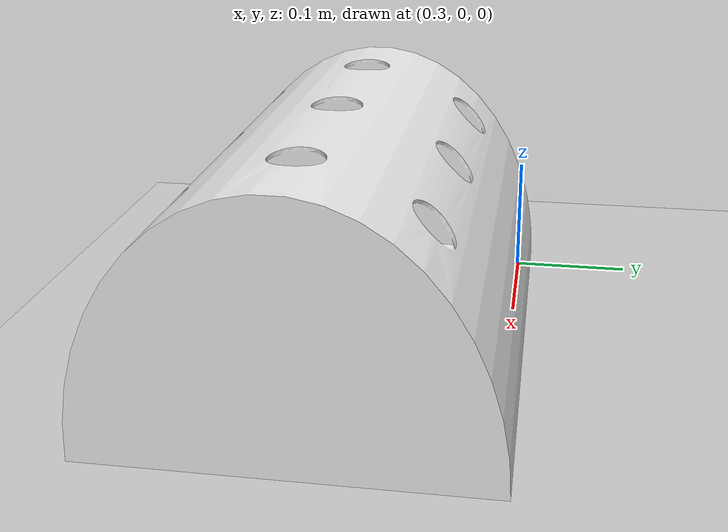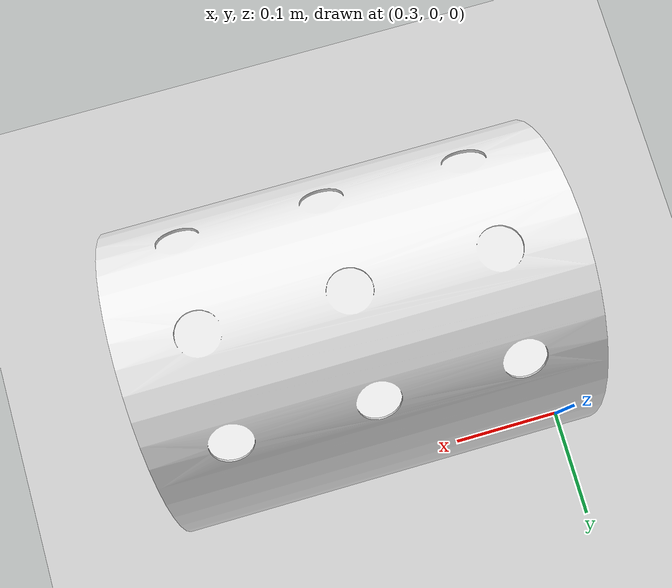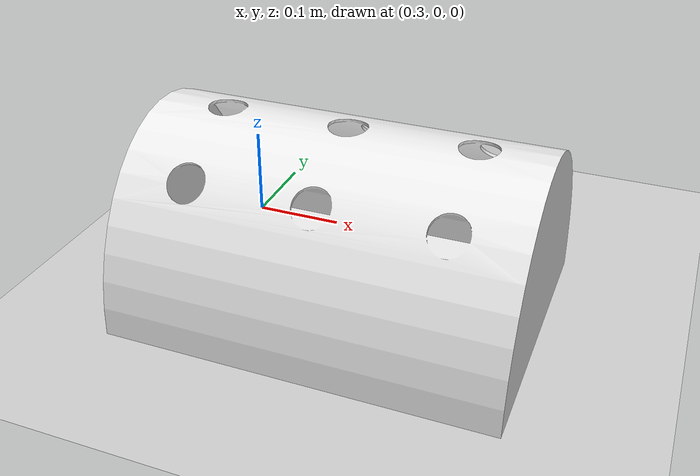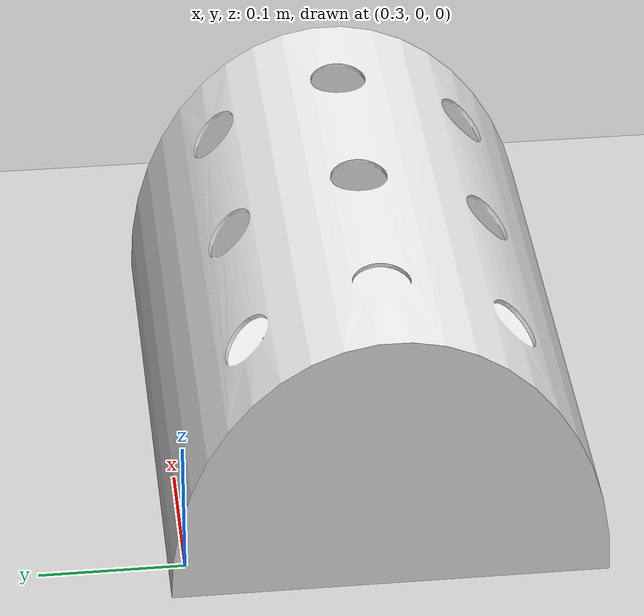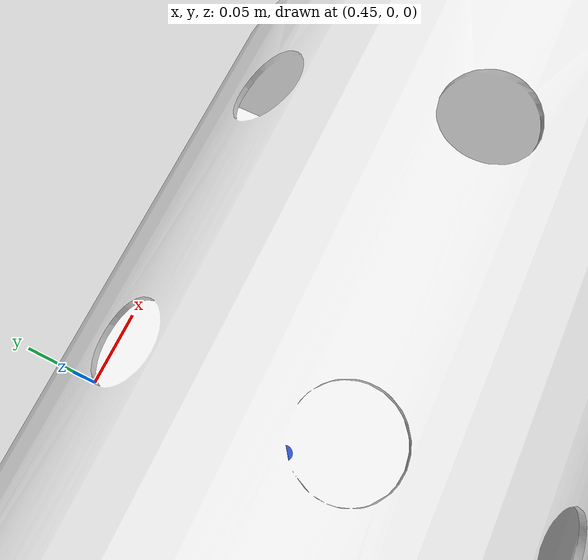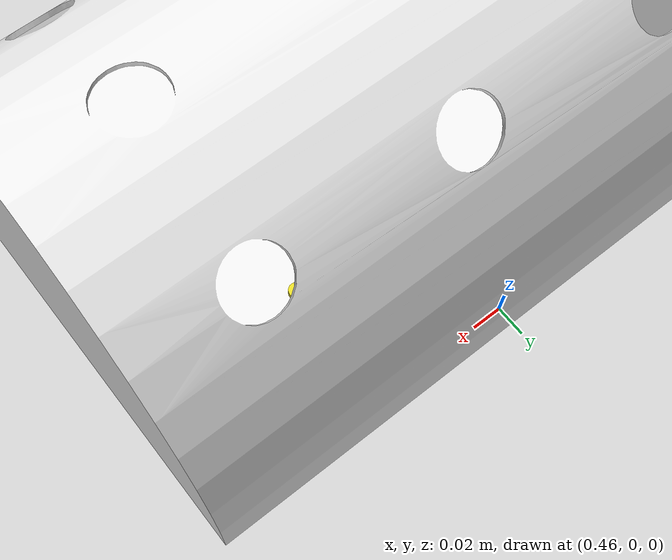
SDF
<sdf version="1.6">
 <world name="default">
  <light name="sun" type="directional">
   <pose>0 0 10 0 -0 0</pose>
   <diffuse>0.8 0.8 0.8 1</diffuse>
   <specular>0.2 0.2 0.2 1</specular>
   <attenuation>
    <range>1000</range>
    <constant>0.9</constant>
    <linear>0.01</linear>
    <quadratic>0.001</quadratic>
   </attenuation>
   <direction>-0.5 0.1 -0.9</direction>
  </light>
  <model name="ground_plane">
   <static>1</static>
   <link name="link">
    <collision name="collision">
     <geometry><plane><normal>0 0 1</normal><size>100 100</size></plane></geometry>
     <surface><friction><ode><mu>100</mu><mu2>50</mu2></ode></friction></surface>
    </collision>
    <visual name="visual">
     <cast_shadows>0</cast_shadows>
     <geometry><plane><normal>0 0 1</normal><size>100 100</size></plane></geometry>
     <material>
      <script>
       <uri>/usr/share/gazebo-9/media/materials/scripts/gazebo.material</uri>
       <name>Gazebo/Grey</name>
      </script>
     </material>
    </visual>
   </link>
  </model>
  <gravity>0 0 -9.8</gravity>
  <magnetic_field>6e-06 2.3e-05 -4.2e-05</magnetic_field>
  <atmosphere type="adiabatic"/>
  <physics name="default_physics" default="0" type="ode">
   <max_step_size>0.001</max_step_size>
   <real_time_factor>1</real_time_factor>
   <real_time_update_rate>1000</real_time_update_rate>
  </physics>
  <scene><ambient>0.4 0.4 0.4 1</ambient><background>0.7 0.7 0.7 1</background><shadows>1</shadows></scene>
  <audio><device>default</device></audio>
  <spherical_coordinates>
   <surface_model>EARTH_WGS84</surface_model>
   <latitude_deg>0</latitude_deg>
   <longitude_deg>0</longitude_deg>
   <elevation>0</elevation>
   <heading_deg>0</heading_deg>
  </spherical_coordinates>
  <model name="enterocoelia_model">
   <link name="link_0">
    <pose>0 0 0 1.57 -0 0</pose>
    <visual name="visual">
     <geometry>
      <mesh>
       <uri>/home/idear/catkin_ws/src/Robotics/rcm_sim_world/enterocoelia_model/enterocoelia_model.STL</uri>
       <scale>1 1 1</scale>
      </mesh>
     </geometry>
     <material>
      <lighting>1</lighting>
      <script>
       <uri>/usr/share/gazebo-9/media/materials/scripts/gazebo.material</uri>
       <name>Gazebo/White</name>
      </script>
     </material>
    </visual>
    <collision name="collision">
     <pose>0 0 0 1.57 -0 0</pose>
     <geometry>
      <mesh>
       <uri>/home/idear/catkin_ws/src/Robotics/rcm_sim_world/enterocoelia_model/enterocoelia_model.STL</uri>
       <scale>1 1 1</scale>
      </mesh>
     </geometry>
     <surface>
      <friction>
       <ode><mu>1</mu><mu2>1</mu2><fdir1>0 0 0</fdir1><slip1>0</slip1><slip2>0</slip2></ode>
       <torsional>
        <coefficient>1</coefficient>
        <patch_radius>0</patch_radius>
        <surface_radius>0</surface_radius>
        <use_patch_radius>1</use_patch_radius>
        <ode><slip>0</slip></ode>
       </torsional>
      </friction>
      <bounce><restitution_coefficient>0</restitution_coefficient><threshold>1e+06</threshold></bounce>
      <contact>
       <collide_without_contact>0</collide_without_contact>
       <collide_without_contact_bitmask>1</collide_without_contact_bitmask>
       <collide_bitmask>1</collide_bitmask>
       <ode>
        <soft_cfm>0</soft_cfm>
        <soft_erp>0.2</soft_erp>
        <kp>1e+13</kp>
        <kd>1</kd>
        <max_vel>0.01</max_vel>
        <min_depth>0</min_depth>
       </ode>
       <bullet>
        <split_impulse>1</split_impulse>
        <split_impulse_penetration_threshold>-0.01</split_impulse_penetration_threshold>
        <soft_cfm>0</soft_cfm>
        <soft_erp>0.2</soft_erp>
        <kp>1e+13</kp>
        <kd>1</kd>
       </bullet>
      </contact>
     </surface>
    </collision>
   </link>
   <static>1</static>
   <pose>0.27 -0.138277 0 0 -0 0</pose>
  </model>
  <model name="rcm_tp_yellow">
   <link name="link_0">
    <inertial>
     <mass>1</mass>
     <inertia><ixx>0.145833</ixx><ixy>0</ixy><ixz>0</ixz><iyy>0.145833</iyy><iyz>0</iyz><izz>0.125</izz></inertia>
    </inertial>
    <visual name="visual">
     <geometry><cylinder><radius>0.005</radius><length>0.005</length></cylinder></geometry>
     <material>
      <lighting>1</lighting>
      <script>
       <uri>/usr/share/gazebo-9/media/materials/scripts/gazebo.material</uri>
       <name>Gazebo/Yellow</name>
      </script>
      <shader type="vertex"><normal_map>__default__</normal_map></shader>
      <emissive>0 0 0 1</emissive>
     </material>
    </visual>
    <collision name="collision">
     <geometry><cylinder><radius>0.005</radius><length>0.005</length></cylinder></geometry>
     <surface>
      <friction>
       <ode><mu>1</mu><mu2>1</mu2><fdir1>0 0 0</fdir1><slip1>0</slip1><slip2>0</slip2></ode>
       <torsional>
        <coefficient>1</coefficient>
        <patch_radius>0</patch_radius>
        <surface_radius>0</surface_radius>
        <use_patch_radius>1</use_patch_radius>
        <ode><slip>0</slip></ode>
       </torsional>
      </friction>
      <bounce><restitution_coefficient>0</restitution_coefficient><threshold>1e+06</threshold></bounce>
      <contact>
       <collide_without_contact>0</collide_without_contact>
       <collide_without_contact_bitmask>1</collide_without_contact_bitmask>
       <collide_bitmask>1</collide_bitmask>
       <ode>
        <soft_cfm>0</soft_cfm>
        <soft_erp>0.2</soft_erp>
        <kp>1e+13</kp>
        <kd>1</kd>
        <max_vel>0.01</max_vel>
        <min_depth>0</min_depth>
       </ode>
       <bullet>
        <split_impulse>1</split_impulse>
        <split_impulse_penetration_threshold>-0.01</split_impulse_penetration_threshold>
        <soft_cfm>0</soft_cfm>
        <soft_erp>0.2</soft_erp>
        <kp>1e+13</kp>
        <kd>1</kd>
       </bullet>
      </contact>
     </surface>
    </collision>
   </link>
   <static>0</static>
   <pose>0.550602 -0.082265 0.005 -7e-06 -9e-06 -0.000113</pose>
  </model>
  <model name="rcm_tp_blue">
   <link name="link_0">
    <inertial>
     <mass>1</mass>
     <inertia><ixx>0.145833</ixx><ixy>0</ixy><ixz>0</ixz><iyy>0.145833</iyy><iyz>0</iyz><izz>0.125</izz></inertia>
    </inertial>
    <visual name="visual">
     <geometry><cylinder><radius>0.005</radius><length>0.005</length></cylinder></geometry>
     <material>
      <lighting>1</lighting>
      <script>
       <uri>/usr/share/gazebo-9/media/materials/scripts/gazebo.material</uri>
       <name>Gazebo/Blue</name>
      </script>
      <shader type="vertex"><normal_map>__default__</normal_map></shader>
      <emissive>0 0 0 1</emissive>
     </material>
    </visual>
    <collision name="collision">
     <geometry><cylinder><radius>0.005</radius><length>0.005</length></cylinder></geometry>
     <surface>
      <friction>
       <ode><mu>1</mu><mu2>1</mu2><fdir1>0 0 0</fdir1><slip1>0</slip1><slip2>0</slip2></ode>
       <torsional>
        <coefficient>1</coefficient>
        <patch_radius>0</patch_radius>
        <surface_radius>0</surface_radius>
        <use_patch_radius>1</use_patch_radius>
        <ode><slip>0</slip></ode>
       </torsional>
      </friction>
      <bounce><restitution_coefficient>0</restitution_coefficient><threshold>1e+06</threshold></bounce>
      <contact>
       <collide_without_contact>0</collide_without_contact>
       <collide_without_contact_bitmask>1</collide_without_contact_bitmask>
       <collide_bitmask>1</collide_bitmask>
       <ode>
        <soft_cfm>0</soft_cfm>
        <soft_erp>0.2</soft_erp>
        <kp>1e+13</kp>
        <kd>1</kd>
        <max_vel>0.01</max_vel>
        <min_depth>0</min_depth>
       </ode>
       <bullet>
        <split_impulse>1</split_impulse>
        <split_impulse_penetration_threshold>-0.01</split_impulse_penetration_threshold>
        <soft_cfm>0</soft_cfm>
        <soft_erp>0.2</soft_erp>
        <kp>1e+13</kp>
        <kd>1</kd>
       </bullet>
      </contact>
     </surface>
    </collision>
   </link>
   <static>0</static>
   <pose>0.464286 -0.128259 0.004991 -3e-06 -6e-06 -0.000114</pose>
  </model>
  <model name="rcm_tp_green">
   <link name="link_0">
    <inertial>
     <mass>1</mass>
     <inertia><ixx>0.145833</ixx><ixy>0</ixy><ixz>0</ixz><iyy>0.145833</iyy><iyz>0</iyz><izz>0.125</izz></inertia>
    </inertial>
    <visual name="visual">
     <geometry><cylinder><radius>0.005</radius><length>0.005</length></cylinder></geometry>
     <material>
      <lighting>1</lighting>
      <script>
       <uri>/usr/share/gazebo-9/media/materials/scripts/gazebo.material</uri>
       <name>Gazebo/Green</name>
      </script>
      <shader type="vertex"><normal_map>__default__</normal_map></shader>
      <emissive>0 0 0 1</emissive>
     </material>
    </visual>
    <collision name="collision">
     <geometry><cylinder><radius>0.005</radius><length>0.005</length></cylinder></geometry>
     <surface>
      <friction>
       <ode><mu>1</mu><mu2>1</mu2><fdir1>0 0 0</fdir1><slip1>0</slip1><slip2>0</slip2></ode>
       <torsional>
        <coefficient>1</coefficient>
        <patch_radius>0</patch_radius>
        <surface_radius>0</surface_radius>
        <use_patch_radius>1</use_patch_radius>
        <ode><slip>0</slip></ode>
       </torsional>
      </friction>
      <bounce><restitution_coefficient>0</restitution_coefficient><threshold>1e+06</threshold></bounce>
      <contact>
       <collide_without_contact>0</collide_without_contact>
       <collide_without_contact_bitmask>1</collide_without_contact_bitmask>
       <collide_bitmask>1</collide_bitmask>
       <ode>
        <soft_cfm>0</soft_cfm>
        <soft_erp>0.2</soft_erp>
        <kp>1e+13</kp>
        <kd>1</kd>
        <max_vel>0.01</max_vel>
        <min_depth>0</min_depth>
       </ode>
       <bullet>
        <split_impulse>1</split_impulse>
        <split_impulse_penetration_threshold>-0.01</split_impulse_penetration_threshold>
        <soft_cfm>0</soft_cfm>
        <soft_erp>0.2</soft_erp>
        <kp>1e+13</kp>
        <kd>1</kd>
       </bullet>
      </contact>
     </surface>
    </collision>
   </link>
   <static>0</static>
   <pose>0.361654 -0.094127 0.004992 1e-06 4.2e-05 -0.000113</pose>
  </model>
 </world>
</sdf>
